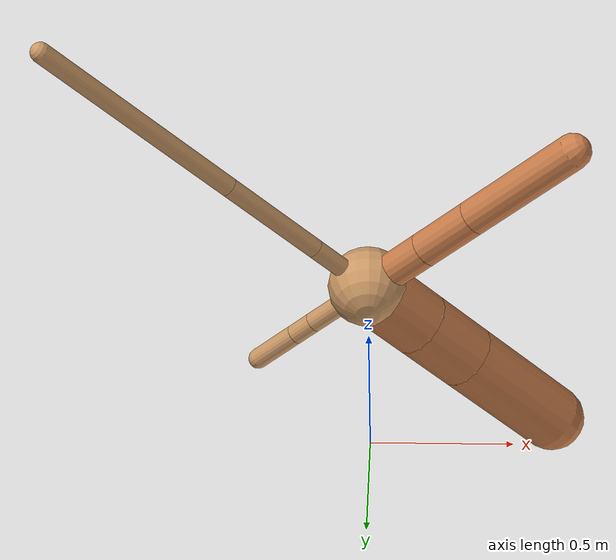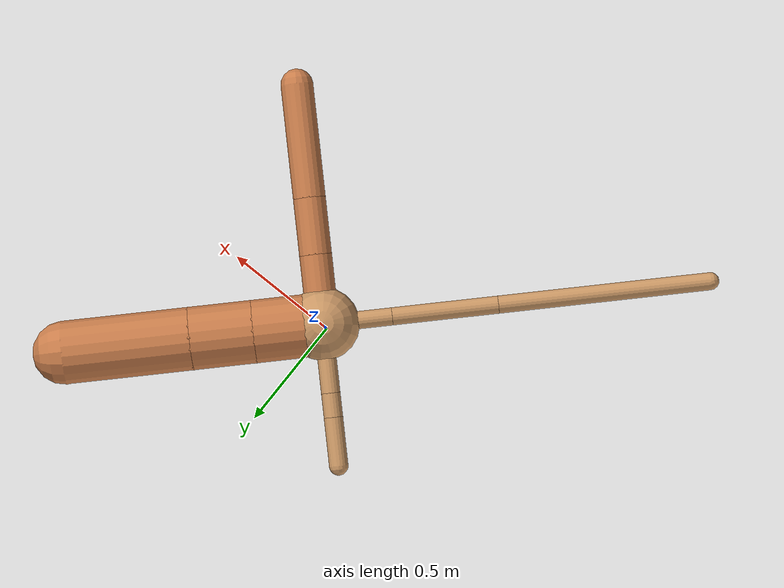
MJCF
<?xml version="1.0" ?>
<mujoco model="ant">

	<compiler angle="degree" coordinate="local" inertiafromgeom="true"/>

	<option integrator="RK4" timestep="0.01"/>

	<custom>

		<numeric data="0.0 0.0 0.55 1.0 0.0 0.0 0.0 0.0 1.0 0.0 -1.0 0.0 -1.0 0.0 1.0" name="init_qpos"/>

	</custom>

	<default>

		<joint armature="1" damping="1" limited="true"/>

		<geom conaffinity="0" condim="3" density="5.0" friction="1.5 0.1 0.1" margin="0.01" rgba="0.8 0.6 0.4 1"/>

	</default>

	<worldbody>

		<body name="torso" pos="0 0 0.75">

			<geom name="torso_geom" pos="0 0 0" size="0.15015660616931756" type="sphere"/>

			<!--joint armature="0" damping="0" limited="false" margin="0.01" name="root" pos="0 0 0" type="free"/-->

			<body name="front_left_leg" pos="0 0 0">

				<geom fromto="0 0 0 0.2 0.2 0" name="aux_1_geom" size="0.1300252429588303" type="capsule" rgba=".8 .5 .3 1"/>

				<body name="aux_1" pos="0.2 0.2 0">

					<joint axis="0 0 1" name="hip_1" pos="0.0 0.0 0.0" range="-40 40" type="hinge"/>

					<geom fromto="0 0 0 0.18335319117957463 0.18335319117957463 0" name="left_leg_geom" size="0.1300252429588303" type="capsule" rgba=".8 .5 .3 1"/>

					<body pos="0.18335319117957463 0.18335319117957463 0" name="front_left_foot">

						<joint axis="-1 1 0" name="ankle_1" pos="0.0 0.0 0.0" range="30 100" type="hinge"/>

						<geom fromto="0 0 0 0.36670638235914926 0.36670638235914926 0" name="left_ankle_geom" size="0.1300252429588303" type="capsule" rgba=".8 .5 .3 1"/>

					</body>

				</body>

			</body>

			<body name="front_right_leg" pos="0 0 0">

				<geom fromto="0 0 0 -0.2 0.2 0" name="aux_2_geom" size="0.039128961658144654" type="capsule"/>

				<body name="aux_2" pos="-0.2 0.2 0">

					<joint axis="0 0 1" name="hip_2" pos="0.0 0.0 0.0" range="-40 40" type="hinge"/>

					<geom fromto="0 0 0 -0.07031517402943772 0.07031517402943772 0" name="right_leg_geom" size="0.039128961658144654" type="capsule"/>

					<body pos="-0.07031517402943772 0.07031517402943772 0" name="front_right_foot">

						<joint axis="1 1 0" name="ankle_2" pos="0.0 0.0 0.0" range="-100 -30" type="hinge"/>

						<geom fromto="0 0 0 -0.14063034805887545 0.14063034805887545 0" name="right_ankle_geom" size="0.039128961658144654" type="capsule"/>

					</body>

				</body>

			</body>

			<body name="left_back_leg" pos="0 0 0">

				<geom fromto="0 0 0 -0.2 -0.2 0" name="aux_3_geom" size="0.03637023979800815" type="capsule"/>

				<body name="aux_3" pos="-0.2 -0.2 0">

					<joint axis="0 0 1" name="hip_3" pos="0.0 0.0 0.0" range="-40 40" type="hinge"/>

					<geom fromto="0 0 0 -0.3080302913121873 -0.3080302913121873 0" name="back_leg_geom" size="0.03637023979800815" type="capsule"/>

					<body pos="-0.3080302913121873 -0.3080302913121873 0" name="left_back_foot">

						<joint axis="-1 1 0" name="ankle_3" pos="0.0 0.0 0.0" range="-100 -30" type="hinge"/>

						<geom fromto="0 0 0 -0.6160605826243746 -0.6160605826243746 0" name="third_ankle_geom" size="0.03637023979800815" type="capsule"/>

					</body>

				</body>

			</body>

			<body name="right_back_leg" pos="0 0 0">

				<geom fromto="0 0 0 0.2 -0.2 0" name="aux_4_geom" size="0.06699456639767545" type="capsule" rgba=".8 .5 .3 1"/>

				<body name="aux_4" pos="0.2 -0.2 0">

					<joint axis="0 0 1" name="hip_4" pos="0.0 0.0 0.0" range="-40 40" type="hinge"/>

					<geom fromto="0 0 0 0.16565157327825278 -0.16565157327825278 0" name="rightback_leg_geom" size="0.06699456639767545" type="capsule" rgba=".8 .5 .3 1"/>

					<body pos="0.16565157327825278 -0.16565157327825278 0" name="right_back_foot">

						<joint axis="1 1 0" name="ankle_4" pos="0.0 0.0 0.0" range="30 100" type="hinge"/>

						<geom fromto="0 0 0 0.33130314655650556 -0.33130314655650556 0" name="fourth_ankle_geom" size="0.06699456639767545" type="capsule" rgba=".8 .5 .3 1"/>

					</body>

				</body>

			</body>

		</body>

	</worldbody>

	<actuator>

		<motor ctrllimited="true" ctrlrange="-1.0 1.0" joint="hip_4" gear="150"/>

		<motor ctrllimited="true" ctrlrange="-1.0 1.0" joint="ankle_4" gear="150"/>

		<motor ctrllimited="true" ctrlrange="-1.0 1.0" joint="hip_1" gear="150"/>

		<motor ctrllimited="true" ctrlrange="-1.0 1.0" joint="ankle_1" gear="150"/>

		<motor ctrllimited="true" ctrlrange="-1.0 1.0" joint="hip_2" gear="150"/>

		<motor ctrllimited="true" ctrlrange="-1.0 1.0" joint="ankle_2" gear="150"/>

		<motor ctrllimited="true" ctrlrange="-1.0 1.0" joint="hip_3" gear="150"/>

		<motor ctrllimited="true" ctrlrange="-1.0 1.0" joint="ankle_3" gear="150"/>

	</actuator>

</mujoco>
